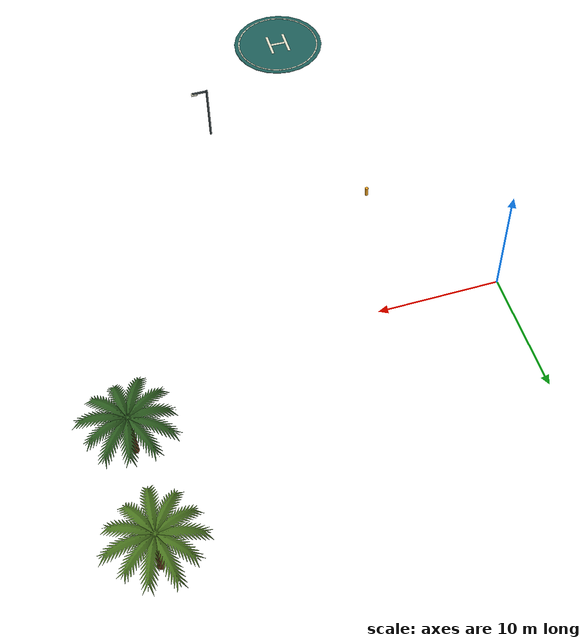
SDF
<sdf version="1.9">
 <world name="fleetscope_estate">
  <model name="palm_032">
   <static>true</static>
   <pose>30.5 6.5 0 0 0 1.438392</pose>
   <link name="structure">
    <visual name="visual_0">
     <geometry>
      <mesh><uri>model://estate_palm/meshes/trunk.obj</uri><scale>1.006065 1.006065 1.006065</scale></mesh>
     </geometry>
     <material>
      <ambient>0.4 0.24 0.11 1</ambient>
      <diffuse>0.4 0.24 0.11 1</diffuse>
      <specular>.08 .08 .08 1</specular>
     </material>
    </visual>
    <visual name="visual_1">
     <geometry>
      <mesh><uri>model://estate_palm/meshes/fronds.obj</uri><scale>1.006065 1.006065 1.006065</scale></mesh>
     </geometry>
     <material>
      <ambient>0.17 0.36 0.12 1</ambient>
      <diffuse>0.17 0.36 0.12 1</diffuse>
      <specular>.08 .08 .08 1</specular>
     </material>
    </visual>
    <collision name="collision_2">
     <pose>0 0 2.263646 0 0 0</pose>
     <geometry>
      <cylinder><radius>0.26157687015669284</radius><length>4.527291983481222</length></cylinder>
     </geometry>
    </collision>
   </link>
  </model>
  <model name="palm_036">
   <static>true</static>
   <pose>30.5 15.5 0 0 0 3.517302</pose>
   <link name="structure">
    <visual name="visual_0">
     <geometry>
      <mesh><uri>model://estate_palm/meshes/trunk.obj</uri><scale>1.020039 1.020039 1.020039</scale></mesh>
     </geometry>
     <material>
      <ambient>0.4 0.24 0.11 1</ambient>
      <diffuse>0.4 0.24 0.11 1</diffuse>
      <specular>.08 .08 .08 1</specular>
     </material>
    </visual>
    <visual name="visual_1">
     <geometry>
      <mesh><uri>model://estate_palm/meshes/fronds.obj</uri><scale>1.020039 1.020039 1.020039</scale></mesh>
     </geometry>
     <material>
      <ambient>0.29 0.46 0.12 1</ambient>
      <diffuse>0.29 0.46 0.12 1</diffuse>
      <specular>.08 .08 .08 1</specular>
     </material>
    </visual>
    <collision name="collision_2">
     <pose>0 0 2.295088 0 0 0</pose>
     <geometry>
      <cylinder><radius>0.2652101656940399</radius><length>4.590175944704535</length></cylinder>
     </geometry>
    </collision>
   </link>
  </model>
  <model name="drone_landing_pad">
   <static>true</static>
   <pose>9 -33 0 0 0 0</pose>
   <link name="structure">
    <visual name="visual_0">
     <pose>0 0 0.025 0 0 0</pose>
     <geometry><cylinder><radius>4.2</radius><length>0.05</length></cylinder></geometry>
     <material>
      <ambient>0.12 0.38 0.36 1</ambient>
      <diffuse>0.12 0.38 0.36 1</diffuse>
      <specular>.08 .08 .08 1</specular>
     </material>
    </visual>
    <collision name="collision_0">
     <pose>0 0 0.025 0 0 0</pose>
     <geometry><cylinder><radius>4.2</radius><length>0.05</length></cylinder></geometry>
    </collision>
    <visual name="visual_1">
     <pose>3.75 0 0.058 0 0 1.570796</pose>
     <geometry><box><size>0.55 0.12 0.01</size></box></geometry>
     <material>
      <ambient>0.9 0.9 0.81 1</ambient>
      <diffuse>0.9 0.9 0.81 1</diffuse>
      <specular>.08 .08 .08 1</specular>
     </material>
     <cast_shadows>false</cast_shadows>
    </visual>
    <visual name="visual_2">
     <pose>3.703831 0.5866292 0.058 0 0 1.727876</pose>
     <geometry><box><size>0.55 0.12 0.01</size></box></geometry>
     <material>
      <ambient>0.9 0.9 0.81 1</ambient>
      <diffuse>0.9 0.9 0.81 1</diffuse>
      <specular>.08 .08 .08 1</specular>
     </material>
     <cast_shadows>false</cast_shadows>
    </visual>
    <visual name="visual_3">
     <pose>3.566462 1.158814 0.058 0 0 1.884956</pose>
     <geometry><box><size>0.55 0.12 0.01</size></box></geometry>
     <material>
      <ambient>0.9 0.9 0.81 1</ambient>
      <diffuse>0.9 0.9 0.81 1</diffuse>
      <specular>.08 .08 .08 1</specular>
     </material>
     <cast_shadows>false</cast_shadows>
    </visual>
    <visual name="visual_4">
     <pose>3.341274 1.702464 0.058 0 0 2.042035</pose>
     <geometry><box><size>0.55 0.12 0.01</size></box></geometry>
     <material>
      <ambient>0.9 0.9 0.81 1</ambient>
      <diffuse>0.9 0.9 0.81 1</diffuse>
      <specular>.08 .08 .08 1</specular>
     </material>
     <cast_shadows>false</cast_shadows>
    </visual>
    <visual name="visual_5">
     <pose>3.033814 2.204195 0.058 0 0 2.199115</pose>
     <geometry><box><size>0.55 0.12 0.01</size></box></geometry>
     <material>
      <ambient>0.9 0.9 0.81 1</ambient>
      <diffuse>0.9 0.9 0.81 1</diffuse>
      <specular>.08 .08 .08 1</specular>
     </material>
     <cast_shadows>false</cast_shadows>
    </visual>
    <visual name="visual_6">
     <pose>2.65165 2.65165 0.058 0 0 2.356194</pose>
     <geometry><box><size>0.55 0.12 0.01</size></box></geometry>
     <material>
      <ambient>0.9 0.9 0.81 1</ambient>
      <diffuse>0.9 0.9 0.81 1</diffuse>
      <specular>.08 .08 .08 1</specular>
     </material>
     <cast_shadows>false</cast_shadows>
    </visual>
    <visual name="visual_7">
     <pose>2.204195 3.033814 0.058 0 0 2.513274</pose>
     <geometry><box><size>0.55 0.12 0.01</size></box></geometry>
     <material>
      <ambient>0.9 0.9 0.81 1</ambient>
      <diffuse>0.9 0.9 0.81 1</diffuse>
      <specular>.08 .08 .08 1</specular>
     </material>
     <cast_shadows>false</cast_shadows>
    </visual>
    <visual name="visual_8">
     <pose>1.702464 3.341274 0.058 0 0 2.670354</pose>
     <geometry><box><size>0.55 0.12 0.01</size></box></geometry>
     <material>
      <ambient>0.9 0.9 0.81 1</ambient>
      <diffuse>0.9 0.9 0.81 1</diffuse>
      <specular>.08 .08 .08 1</specular>
     </material>
     <cast_shadows>false</cast_shadows>
    </visual>
    <visual name="visual_9">
     <pose>1.158814 3.566462 0.058 0 0 2.827433</pose>
     <geometry><box><size>0.55 0.12 0.01</size></box></geometry>
     <material>
      <ambient>0.9 0.9 0.81 1</ambient>
      <diffuse>0.9 0.9 0.81 1</diffuse>
      <specular>.08 .08 .08 1</specular>
     </material>
     <cast_shadows>false</cast_shadows>
    </visual>
    <visual name="visual_10">
     <pose>0.5866292 3.703831 0.058 0 0 2.984513</pose>
     <geometry><box><size>0.55 0.12 0.01</size></box></geometry>
     <material>
      <ambient>0.9 0.9 0.81 1</ambient>
      <diffuse>0.9 0.9 0.81 1</diffuse>
      <specular>.08 .08 .08 1</specular>
     </material>
     <cast_shadows>false</cast_shadows>
    </visual>
    <visual name="visual_11">
     <pose>2.296213e-16 3.75 0.058 0 0 3.141593</pose>
     <geometry><box><size>0.55 0.12 0.01</size></box></geometry>
     <material>
      <ambient>0.9 0.9 0.81 1</ambient>
      <diffuse>0.9 0.9 0.81 1</diffuse>
      <specular>.08 .08 .08 1</specular>
     </material>
     <cast_shadows>false</cast_shadows>
    </visual>
    <visual name="visual_12">
     <pose>-0.5866292 3.703831 0.058 0 0 3.298672</pose>
     <geometry><box><size>0.55 0.12 0.01</size></box></geometry>
     <material>
      <ambient>0.9 0.9 0.81 1</ambient>
      <diffuse>0.9 0.9 0.81 1</diffuse>
      <specular>.08 .08 .08 1</specular>
     </material>
     <cast_shadows>false</cast_shadows>
    </visual>
    <visual name="visual_13">
     <pose>-1.158814 3.566462 0.058 0 0 3.455752</pose>
     <geometry><box><size>0.55 0.12 0.01</size></box></geometry>
     <material>
      <ambient>0.9 0.9 0.81 1</ambient>
      <diffuse>0.9 0.9 0.81 1</diffuse>
      <specular>.08 .08 .08 1</specular>
     </material>
     <cast_shadows>false</cast_shadows>
    </visual>
    <visual name="visual_14">
     <pose>-1.702464 3.341274 0.058 0 0 3.612832</pose>
     <geometry><box><size>0.55 0.12 0.01</size></box></geometry>
     <material>
      <ambient>0.9 0.9 0.81 1</ambient>
      <diffuse>0.9 0.9 0.81 1</diffuse>
      <specular>.08 .08 .08 1</specular>
     </material>
     <cast_shadows>false</cast_shadows>
    </visual>
    <visual name="visual_15">
     <pose>-2.204195 3.033814 0.058 0 0 3.769911</pose>
     <geometry><box><size>0.55 0.12 0.01</size></box></geometry>
     <material>
      <ambient>0.9 0.9 0.81 1</ambient>
      <diffuse>0.9 0.9 0.81 1</diffuse>
      <specular>.08 .08 .08 1</specular>
     </material>
     <cast_shadows>false</cast_shadows>
    </visual>
    <visual name="visual_16">
     <pose>-2.65165 2.65165 0.058 0 0 3.926991</pose>
     <geometry><box><size>0.55 0.12 0.01</size></box></geometry>
     <material>
      <ambient>0.9 0.9 0.81 1</ambient>
      <diffuse>0.9 0.9 0.81 1</diffuse>
      <specular>.08 .08 .08 1</specular>
     </material>
     <cast_shadows>false</cast_shadows>
    </visual>
    <visual name="visual_17">
     <pose>-3.033814 2.204195 0.058 0 0 4.08407</pose>
     <geometry><box><size>0.55 0.12 0.01</size></box></geometry>
     <material>
      <ambient>0.9 0.9 0.81 1</ambient>
      <diffuse>0.9 0.9 0.81 1</diffuse>
      <specular>.08 .08 .08 1</specular>
     </material>
     <cast_shadows>false</cast_shadows>
    </visual>
    <visual name="visual_18">
     <pose>-3.341274 1.702464 0.058 0 0 4.24115</pose>
     <geometry><box><size>0.55 0.12 0.01</size></box></geometry>
     <material>
      <ambient>0.9 0.9 0.81 1</ambient>
      <diffuse>0.9 0.9 0.81 1</diffuse>
      <specular>.08 .08 .08 1</specular>
     </material>
     <cast_shadows>false</cast_shadows>
    </visual>
    <visual name="visual_19">
     <pose>-3.566462 1.158814 0.058 0 0 4.39823</pose>
     <geometry><box><size>0.55 0.12 0.01</size></box></geometry>
     <material>
      <ambient>0.9 0.9 0.81 1</ambient>
      <diffuse>0.9 0.9 0.81 1</diffuse>
      <specular>.08 .08 .08 1</specular>
     </material>
     <cast_shadows>false</cast_shadows>
    </visual>
    <visual name="visual_20">
     <pose>-3.703831 0.5866292 0.058 0 0 4.555309</pose>
     <geometry><box><size>0.55 0.12 0.01</size></box></geometry>
     <material>
      <ambient>0.9 0.9 0.81 1</ambient>
      <diffuse>0.9 0.9 0.81 1</diffuse>
      <specular>.08 .08 .08 1</specular>
     </material>
     <cast_shadows>false</cast_shadows>
    </visual>
    <visual name="visual_21">
     <pose>-3.75 4.592425e-16 0.058 0 0 4.712389</pose>
     <geometry><box><size>0.55 0.12 0.01</size></box></geometry>
     <material>
      <ambient>0.9 0.9 0.81 1</ambient>
      <diffuse>0.9 0.9 0.81 1</diffuse>
      <specular>.08 .08 .08 1</specular>
     </material>
     <cast_shadows>false</cast_shadows>
    </visual>
    <visual name="visual_22">
     <pose>-3.703831 -0.5866292 0.058 0 0 4.869469</pose>
     <geometry><box><size>0.55 0.12 0.01</size></box></geometry>
     <material>
      <ambient>0.9 0.9 0.81 1</ambient>
      <diffuse>0.9 0.9 0.81 1</diffuse>
      <specular>.08 .08 .08 1</specular>
     </material>
     <cast_shadows>false</cast_shadows>
    </visual>
    <visual name="visual_23">
     <pose>-3.566462 -1.158814 0.058 0 0 5.026548</pose>
     <geometry><box><size>0.55 0.12 0.01</size></box></geometry>
     <material>
      <ambient>0.9 0.9 0.81 1</ambient>
      <diffuse>0.9 0.9 0.81 1</diffuse>
      <specular>.08 .08 .08 1</specular>
     </material>
     <cast_shadows>false</cast_shadows>
    </visual>
    <visual name="visual_24">
     <pose>-3.341274 -1.702464 0.058 0 0 5.183628</pose>
     <geometry><box><size>0.55 0.12 0.01</size></box></geometry>
     <material>
      <ambient>0.9 0.9 0.81 1</ambient>
      <diffuse>0.9 0.9 0.81 1</diffuse>
      <specular>.08 .08 .08 1</specular>
     </material>
     <cast_shadows>false</cast_shadows>
    </visual>
    <visual name="visual_25">
     <pose>-3.033814 -2.204195 0.058 0 0 5.340708</pose>
     <geometry><box><size>0.55 0.12 0.01</size></box></geometry>
     <material>
      <ambient>0.9 0.9 0.81 1</ambient>
      <diffuse>0.9 0.9 0.81 1</diffuse>
      <specular>.08 .08 .08 1</specular>
     </material>
     <cast_shadows>false</cast_shadows>
    </visual>
    <visual name="visual_26">
     <pose>-2.65165 -2.65165 0.058 0 0 5.497787</pose>
     <geometry><box><size>0.55 0.12 0.01</size></box></geometry>
     <material>
      <ambient>0.9 0.9 0.81 1</ambient>
      <diffuse>0.9 0.9 0.81 1</diffuse>
      <specular>.08 .08 .08 1</specular>
     </material>
     <cast_shadows>false</cast_shadows>
    </visual>
    <visual name="visual_27">
     <pose>-2.204195 -3.033814 0.058 0 0 5.654867</pose>
     <geometry><box><size>0.55 0.12 0.01</size></box></geometry>
     <material>
      <ambient>0.9 0.9 0.81 1</ambient>
      <diffuse>0.9 0.9 0.81 1</diffuse>
      <specular>.08 .08 .08 1</specular>
     </material>
     <cast_shadows>false</cast_shadows>
    </visual>
    <visual name="visual_28">
     <pose>-1.702464 -3.341274 0.058 0 0 5.811946</pose>
     <geometry><box><size>0.55 0.12 0.01</size></box></geometry>
     <material>
      <ambient>0.9 0.9 0.81 1</ambient>
      <diffuse>0.9 0.9 0.81 1</diffuse>
      <specular>.08 .08 .08 1</specular>
     </material>
     <cast_shadows>false</cast_shadows>
    </visual>
    <visual name="visual_29">
     <pose>-1.158814 -3.566462 0.058 0 0 5.969026</pose>
     <geometry><box><size>0.55 0.12 0.01</size></box></geometry>
     <material>
      <ambient>0.9 0.9 0.81 1</ambient>
      <diffuse>0.9 0.9 0.81 1</diffuse>
      <specular>.08 .08 .08 1</specular>
     </material>
     <cast_shadows>false</cast_shadows>
    </visual>
    <visual name="visual_30">
     <pose>-0.5866292 -3.703831 0.058 0 0 6.126106</pose>
     <geometry><box><size>0.55 0.12 0.01</size></box></geometry>
     <material>
      <ambient>0.9 0.9 0.81 1</ambient>
      <diffuse>0.9 0.9 0.81 1</diffuse>
      <specular>.08 .08 .08 1</specular>
     </material>
     <cast_shadows>false</cast_shadows>
    </visual>
    <visual name="visual_31">
     <pose>-6.888638e-16 -3.75 0.058 0 0 6.283185</pose>
     <geometry><box><size>0.55 0.12 0.01</size></box></geometry>
     <material>
      <ambient>0.9 0.9 0.81 1</ambient>
      <diffuse>0.9 0.9 0.81 1</diffuse>
      <specular>.08 .08 .08 1</specular>
     </material>
     <cast_shadows>false</cast_shadows>
    </visual>
    <visual name="visual_32">
     <pose>0.5866292 -3.703831 0.058 0 0 6.440265</pose>
     <geometry><box><size>0.55 0.12 0.01</size></box></geometry>
     <material>
      <ambient>0.9 0.9 0.81 1</ambient>
      <diffuse>0.9 0.9 0.81 1</diffuse>
      <specular>.08 .08 .08 1</specular>
     </material>
     <cast_shadows>false</cast_shadows>
    </visual>
    <visual name="visual_33">
     <pose>1.158814 -3.566462 0.058 0 0 6.597345</pose>
     <geometry><box><size>0.55 0.12 0.01</size></box></geometry>
     <material>
      <ambient>0.9 0.9 0.81 1</ambient>
      <diffuse>0.9 0.9 0.81 1</diffuse>
      <specular>.08 .08 .08 1</specular>
     </material>
     <cast_shadows>false</cast_shadows>
    </visual>
    <visual name="visual_34">
     <pose>1.702464 -3.341274 0.058 0 0 6.754424</pose>
     <geometry><box><size>0.55 0.12 0.01</size></box></geometry>
     <material>
      <ambient>0.9 0.9 0.81 1</ambient>
      <diffuse>0.9 0.9 0.81 1</diffuse>
      <specular>.08 .08 .08 1</specular>
     </material>
     <cast_shadows>false</cast_shadows>
    </visual>
    <visual name="visual_35">
     <pose>2.204195 -3.033814 0.058 0 0 6.911504</pose>
     <geometry><box><size>0.55 0.12 0.01</size></box></geometry>
     <material>
      <ambient>0.9 0.9 0.81 1</ambient>
      <diffuse>0.9 0.9 0.81 1</diffuse>
      <specular>.08 .08 .08 1</specular>
     </material>
     <cast_shadows>false</cast_shadows>
    </visual>
    <visual name="visual_36">
     <pose>2.65165 -2.65165 0.058 0 0 7.068583</pose>
     <geometry><box><size>0.55 0.12 0.01</size></box></geometry>
     <material>
      <ambient>0.9 0.9 0.81 1</ambient>
      <diffuse>0.9 0.9 0.81 1</diffuse>
      <specular>.08 .08 .08 1</specular>
     </material>
     <cast_shadows>false</cast_shadows>
    </visual>
    <visual name="visual_37">
     <pose>3.033814 -2.204195 0.058 0 0 7.225663</pose>
     <geometry><box><size>0.55 0.12 0.01</size></box></geometry>
     <material>
      <ambient>0.9 0.9 0.81 1</ambient>
      <diffuse>0.9 0.9 0.81 1</diffuse>
      <specular>.08 .08 .08 1</specular>
     </material>
     <cast_shadows>false</cast_shadows>
    </visual>
    <visual name="visual_38">
     <pose>3.341274 -1.702464 0.058 0 0 7.382743</pose>
     <geometry><box><size>0.55 0.12 0.01</size></box></geometry>
     <material>
      <ambient>0.9 0.9 0.81 1</ambient>
      <diffuse>0.9 0.9 0.81 1</diffuse>
      <specular>.08 .08 .08 1</specular>
     </material>
     <cast_shadows>false</cast_shadows>
    </visual>
    <visual name="visual_39">
     <pose>3.566462 -1.158814 0.058 0 0 7.539822</pose>
     <geometry><box><size>0.55 0.12 0.01</size></box></geometry>
     <material>
      <ambient>0.9 0.9 0.81 1</ambient>
      <diffuse>0.9 0.9 0.81 1</diffuse>
      <specular>.08 .08 .08 1</specular>
     </material>
     <cast_shadows>false</cast_shadows>
    </visual>
    <visual name="visual_40">
     <pose>3.703831 -0.5866292 0.058 0 0 7.696902</pose>
     <geometry><box><size>0.55 0.12 0.01</size></box></geometry>
     <material>
      <ambient>0.9 0.9 0.81 1</ambient>
      <diffuse>0.9 0.9 0.81 1</diffuse>
      <specular>.08 .08 .08 1</specular>
     </material>
     <cast_shadows>false</cast_shadows>
    </visual>
    <visual name="visual_41">
     <pose>-0.8 0 0.06 0 0 0</pose>
     <geometry><box><size>0.25 2.5 0.01</size></box></geometry>
     <material>
      <ambient>0.9 0.9 0.81 1</ambient>
      <diffuse>0.9 0.9 0.81 1</diffuse>
      <specular>.08 .08 .08 1</specular>
     </material>
     <cast_shadows>false</cast_shadows>
    </visual>
    <visual name="visual_42">
     <pose>0.8 0 0.06 0 0 0</pose>
     <geometry><box><size>0.25 2.5 0.01</size></box></geometry>
     <material>
      <ambient>0.9 0.9 0.81 1</ambient>
      <diffuse>0.9 0.9 0.81 1</diffuse>
      <specular>.08 .08 .08 1</specular>
     </material>
     <cast_shadows>false</cast_shadows>
    </visual>
    <visual name="visual_43">
     <pose>0 0 0.06 0 0 0</pose>
     <geometry><box><size>1.35 0.25 0.01</size></box></geometry>
     <material>
      <ambient>0.9 0.9 0.81 1</ambient>
      <diffuse>0.9 0.9 0.81 1</diffuse>
      <specular>.08 .08 .08 1</specular>
     </material>
     <cast_shadows>false</cast_shadows>
    </visual>
   </link>
  </model>
  <model name="road_light_18">
   <static>true</static>
   <pose>18 -23 0 0 0 0</pose>
   <link name="structure">
    <visual name="visual_0">
     <pose>0 0 2.6 0 0 0</pose>
     <geometry><cylinder><radius>0.09</radius><length>5.2</length></cylinder></geometry>
     <material>
      <ambient>0.25 0.29 0.3 1</ambient>
      <diffuse>0.25 0.29 0.3 1</diffuse>
      <specular>.08 .08 .08 1</specular>
     </material>
    </visual>
    <collision name="collision_0">
     <pose>0 0 2.6 0 0 0</pose>
     <geometry><cylinder><radius>0.09</radius><length>5.2</length></cylinder></geometry>
    </collision>
    <visual name="visual_1">
     <pose>0.6 0 5.1 0 0 0</pose>
     <geometry><box><size>1.3 0.15 0.12</size></box></geometry>
     <material>
      <ambient>0.25 0.29 0.3 1</ambient>
      <diffuse>0.25 0.29 0.3 1</diffuse>
      <specular>.08 .08 .08 1</specular>
     </material>
    </visual>
    <collision name="collision_1">
     <pose>0.6 0 5.1 0 0 0</pose>
     <geometry><box><size>1.3 0.15 0.12</size></box></geometry>
    </collision>
    <visual name="visual_2">
     <pose>1.1 0 5.03 0 0 0</pose>
     <geometry><box><size>0.5 0.35 0.08</size></box></geometry>
     <material>
      <ambient>0.9 0.9 0.81 1</ambient>
      <diffuse>0.9 0.9 0.81 1</diffuse>
      <specular>.08 .08 .08 1</specular>
     </material>
     <cast_shadows>false</cast_shadows>
    </visual>
   </link>
  </model>
  <model name="bollard_7_-12">
   <static>true</static>
   <pose>7 -12 0 0 0 0</pose>
   <link name="structure">
    <visual name="visual_0">
     <pose>0 0 0.4 0 0 0</pose>
     <geometry><cylinder><radius>0.14</radius><length>0.8</length></cylinder></geometry>
     <material>
      <ambient>0.95 0.64 0.13 1</ambient>
      <diffuse>0.95 0.64 0.13 1</diffuse>
      <specular>.08 .08 .08 1</specular>
     </material>
    </visual>
    <collision name="collision_0">
     <pose>0 0 0.4 0 0 0</pose>
     <geometry><cylinder><radius>0.14</radius><length>0.8</length></cylinder></geometry>
    </collision>
   </link>
  </model>
  <model name="estate_signage">
   <static>true</static>
   <link name="signs">
    <visual name="lettering">
     <geometry><mesh><uri>model://estate_signage/meshes/signage.obj</uri></mesh></geometry>
     <cast_shadows>false</cast_shadows>
    </visual>
   </link>
  </model>
 </world>
</sdf>
